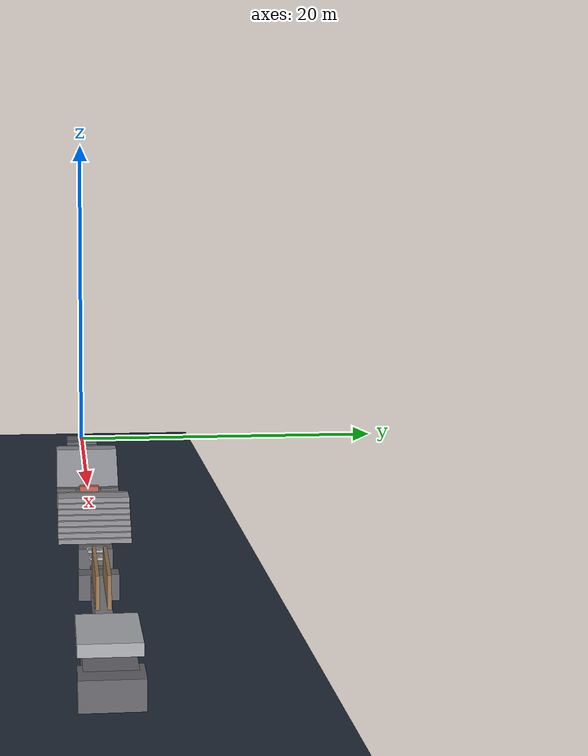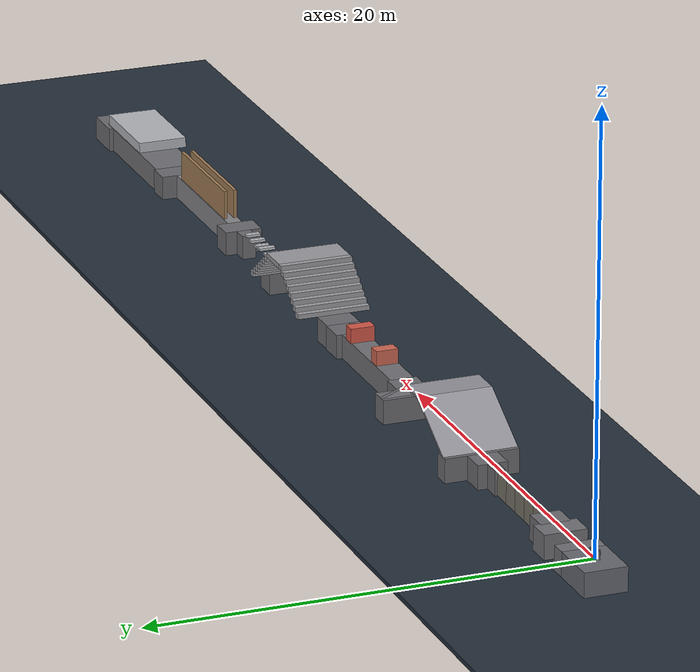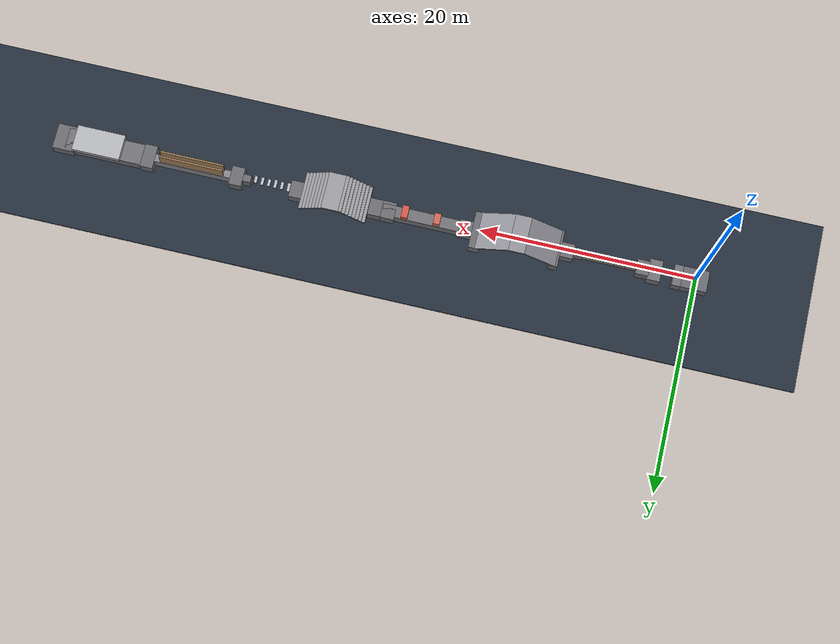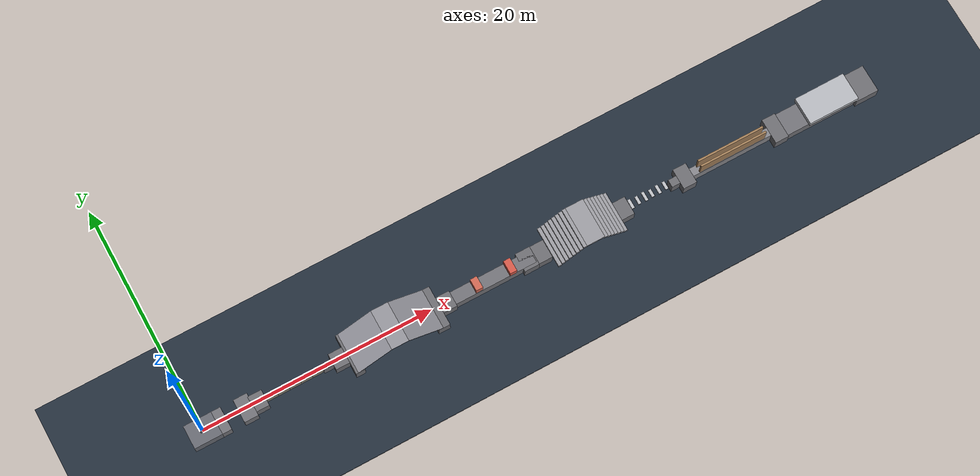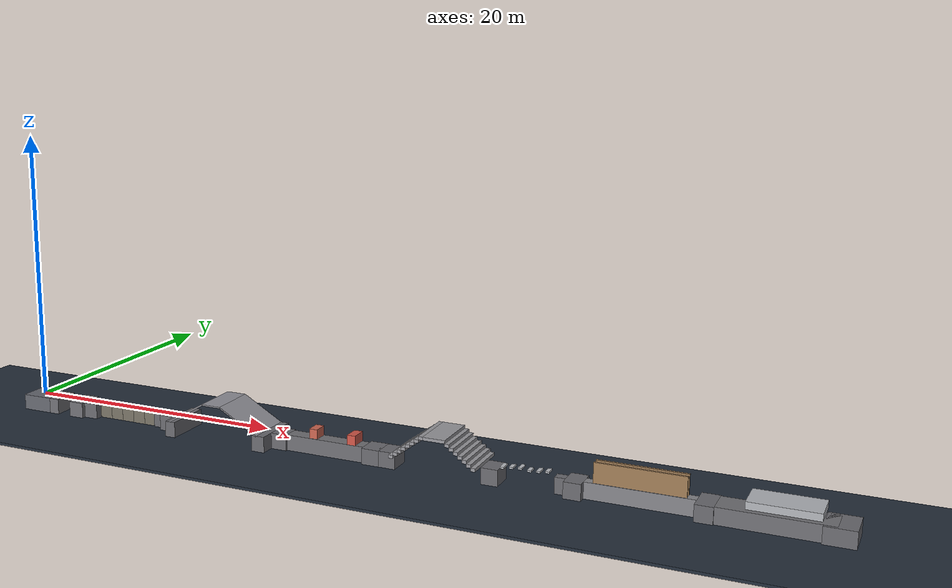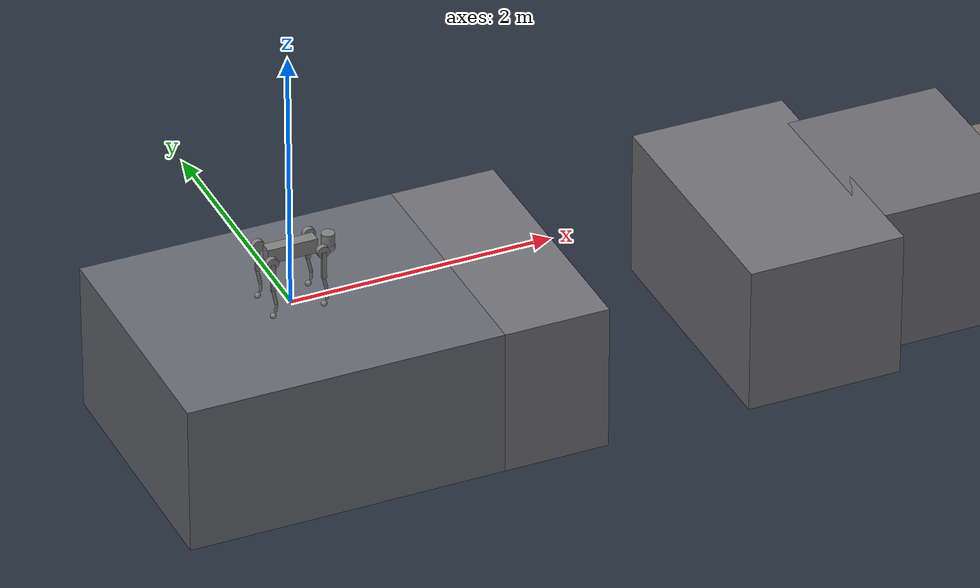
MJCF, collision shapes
<mujoco model="parkour_hard_line">
  <include file="go2.xml"/>
  <!-- Linear hard test track built from the level-10 variants of:
       jumpgap, singlebridge, cross_slope, hurdle, cross_stairs,
       air_beams, corridor, air_stones. -->
  <statistic center="0 0 0.16" extent="1.1" />

  <visual>
    <headlight diffuse="0.6 0.6 0.6" ambient="0.3 0.3 0.3" specular="0 0 0" />
    <rgba haze="0.15 0.25 0.35 1" />
    <global azimuth="-130" elevation="-20" />
  </visual>

  <asset>
    <texture type="skybox" builtin="gradient" rgb1="0.3 0.5 0.7" rgb2="0 0 0" width="512" height="3072" />
    <texture type="2d" name="groundplane" builtin="checker" mark="edge" rgb1="0.18 0.22 0.28" rgb2="0.10 0.14 0.18" markrgb="0.8 0.8 0.8" width="300" height="300" />
    <material name="groundplane" texture="groundplane" texuniform="true" texrepeat="5 5" reflectance="0.0" />
  </asset>

  <worldbody>
    <light pos="30 0 8" dir="0 0 -1" directional="true" />

    <!-- Catch floor below the whole course so gaps/bridges/beams stay meaningful. -->
    <geom name="pit_floor" pos="30 0 -1.25" size="80 8 0.10" type="box" material="groundplane" />

    <!-- Start and inter-section connectors (top surface at z=0). -->
    <geom name="start_hub" pos="0 0 -0.60" type="box" size="1.20 1.00 0.60" rgba="0.40 0.41 0.44 1" />
    <geom name="connector_1" pos="4.80 0 -0.60" type="box" size="0.60 0.70 0.60" rgba="0.42 0.42 0.44 1" />
    <geom name="connector_2" pos="11.825 0 -0.60" type="box" size="0.60 0.70 0.60" rgba="0.42 0.42 0.44 1" />
    <geom name="connector_3" pos="21.325 0 -0.60" type="box" size="0.60 0.70 0.60" rgba="0.42 0.42 0.44 1" />
    <geom name="connector_4" pos="29.825 0 -0.60" type="box" size="0.60 0.80 0.60" rgba="0.42 0.42 0.44 1" />
    <geom name="connector_5" pos="37.275 0 -0.60" type="box" size="0.60 0.80 0.60" rgba="0.42 0.42 0.44 1" />
    <geom name="connector_6" pos="42.945 0 -0.60" type="box" size="0.60 0.90 0.60" rgba="0.42 0.42 0.44 1" />
    <geom name="connector_7" pos="51.345 0 -0.60" type="box" size="0.60 1.10 0.60" rgba="0.42 0.42 0.44 1" />
    <geom name="finish_platform" pos="59.295 0 -0.60" type="box" size="1.00 1.20 0.60" rgba="0.42 0.42 0.44 1" />

    <!-- 1. jumpgap, level 10 -->
    <body name="jumpgap_segment" pos="0.30 0 0">
      <geom name="jumpgap_takeoff" pos="1.30 0 -0.60" type="box" size="0.40 1.0 0.60" rgba="0.44 0.44 0.46 1" />
      <geom name="jumpgap_landing" pos="3.40 0 -0.60" type="box" size="0.60 1.0 0.60" rgba="0.44 0.44 0.46 1" />
    </body>

    <!-- 2. singlebridge, level 10 -->
    <body name="singlebridge_segment" pos="4.50 0 0">
      <geom name="singlebridge_bridge_1" pos="1.40 0 -0.60" type="box" size="0.50 0.13 0.60" rgba="0.47 0.45 0.40 1" />
      <geom name="singlebridge_bridge_2" pos="2.40 0 -0.59" type="box" size="0.50 0.13 0.61" rgba="0.47 0.45 0.40 1" />
      <geom name="singlebridge_bridge_3" pos="3.40 0 -0.58" type="box" size="0.50 0.13 0.62" rgba="0.47 0.45 0.40 1" />
      <geom name="singlebridge_bridge_4" pos="4.40 0 -0.59" type="box" size="0.50 0.13 0.61" rgba="0.47 0.45 0.40 1" />
      <geom name="singlebridge_bridge_5" pos="5.40 0 -0.60" type="box" size="0.50 0.13 0.60" rgba="0.47 0.45 0.40 1" />
      <geom name="singlebridge_landing" pos="6.30 0 -0.60" type="box" size="0.425 0.25 0.60" rgba="0.42 0.42 0.44 1" />
    </body>

    <!-- 3. cross_slope, level 10 -->
    <body name="crossslope_segment" pos="10.626804355117875 0 0">
      <geom name="crossslope_entry_platform" pos="2.198195644882125 0 -0.60" type="box" size="0.40 1.75 0.60" rgba="0.42 0.42 0.44 1" />
      <geom name="crossslope_up" pos="3.524760152799509 0 0.811561136490367" type="box" size="1.7265645079173844 1.75 0.05" quat="0.9666377993314406 0  -0.25614715478347516 0" rgba="0.57 0.57 0.60 1" />
      <geom name="crossslope_top" pos="5.75 0 1.66" type="box" size="0.75 1.75 0.05" rgba="0.57 0.57 0.60 1" />
      <geom name="crossslope_down" pos="7.975239847799509 0 0.811561136490367" type="box" size="1.7265645079173844 1.75 0.05" quat="0.9666377993314406 0 0.25614715478347516 0" rgba="0.57 0.57 0.60 1" />
      <geom name="crossslope_end_platform" pos="9.598195644882125 0 -0.60" type="box" size="0.50 1.75 0.60" rgba="0.42 0.42 0.44 1" />
    </body>

    <!-- 4. hurdle, level 10 -->
    <body name="hurdle_segment" pos="21.025 0 0">
      <geom name="hurdle_lane" pos="4.50 0 -0.60" type="box" size="3.60 0.55 0.60" rgba="0.44 0.44 0.46 1" />
      <geom name="hurdle_1" pos="3.00 0 0.35" type="box" size="0.30 0.52 0.35" rgba="0.80 0.40 0.32 1" />
      <geom name="hurdle_2" pos="6.00 0 0.35" type="box" size="0.30 0.58 0.35" rgba="0.82 0.34 0.28 1" />
      <geom name="hurdle_landing" pos="7.55 0 -0.60" type="box" size="0.65 0.82 0.60" rgba="0.42 0.42 0.44 1" />
    </body>

    <!-- 5. cross_stairs, level 10 -->
    <body name="crossstairs_segment" pos="28.425 0 0">
      <geom name="crossstairs_1" pos="2.155 0 0.115" type="box" size="0.155 1.75 0.115" rgba="0.60 0.60 0.62 1" />
      <geom name="crossstairs_2" pos="2.465 0 0.34500000000000003" type="box" size="0.155 1.75 0.115" rgba="0.60 0.60 0.62 1" />
      <geom name="crossstairs_3" pos="2.775 0 0.5750000000000001" type="box" size="0.155 1.75 0.115" rgba="0.60 0.60 0.62 1" />
      <geom name="crossstairs_4" pos="3.085 0 0.805" type="box" size="0.155 1.75 0.115" rgba="0.60 0.60 0.62 1" />
      <geom name="crossstairs_5" pos="3.395 0 1.0350000000000001" type="box" size="0.155 1.75 0.115" rgba="0.60 0.60 0.62 1" />
      <geom name="crossstairs_6" pos="3.705 0 1.2650000000000001" type="box" size="0.155 1.75 0.115" rgba="0.60 0.60 0.62 1" />
      <geom name="crossstairs_7" pos="4.015000000000001 0 1.495" type="box" size="0.155 1.75 0.115" rgba="0.60 0.60 0.62 1" />
      <geom name="crossstairs_8" pos="4.325 0 1.725" type="box" size="0.155 1.75 0.115" rgba="0.60 0.60 0.62 1" />
      <geom name="crossstairs_top" pos="5.28 0 1.725" type="box" size="0.8 1.75 0.115" rgba="0.60 0.60 0.62 1" />
      <geom name="crossstairs_9" pos="6.235 0 1.495" type="box" size="0.155 1.75 0.115" rgba="0.60 0.60 0.62 1" />
      <geom name="crossstairs_10" pos="6.545 0 1.2650000000000001" type="box" size="0.155 1.75 0.115" rgba="0.60 0.60 0.62 1" />
      <geom name="crossstairs_11" pos="6.8549999999999995 0 1.0350000000000001" type="box" size="0.155 1.75 0.115" rgba="0.60 0.60 0.62 1" />
      <geom name="crossstairs_12" pos="7.164999999999999 0 0.8050000000000002" type="box" size="0.155 1.75 0.115" rgba="0.60 0.60 0.62 1" />
      <geom name="crossstairs_13" pos="7.474999999999999 0 0.5750000000000002" type="box" size="0.155 1.75 0.115" rgba="0.60 0.60 0.62 1" />
      <geom name="crossstairs_14" pos="7.784999999999998 0 0.3450000000000002" type="box" size="0.155 1.75 0.115" rgba="0.60 0.60 0.62 1" />
      <geom name="crossstairs_15" pos="8.094999999999999 0 0.11500000000000019" type="box" size="0.155 1.75 0.115" rgba="0.60 0.60 0.62 1" />
    </body>

    <!-- 6. air_beams, level 10 -->
    <body name="airbeams_segment" pos="36.825 0 0">
      <geom name="airbeams_beam_1" pos="1.18 0 0.06" type="box" size="0.13 0.41 0.06" rgba="0.73 0.74 0.76 1" />
      <geom name="airbeams_beam_2" pos="1.80 0 0.12" type="box" size="0.13 0.35 0.06" rgba="0.73 0.74 0.76 1" />
      <geom name="airbeams_beam_3" pos="2.42 0 0.18" type="box" size="0.13 0.39 0.06" rgba="0.73 0.74 0.76 1" />
      <geom name="airbeams_beam_4" pos="3.04 0 0.09" type="box" size="0.13 0.33 0.06" rgba="0.73 0.74 0.76 1" />
      <geom name="airbeams_beam_5" pos="3.66 0 0.15" type="box" size="0.13 0.37 0.06" rgba="0.73 0.74 0.76 1" />
      <geom name="airbeams_beam_6" pos="4.28 0 0.21" type="box" size="0.13 0.34 0.06" rgba="0.73 0.74 0.76 1" />
      <geom name="airbeams_landing" pos="5.145 0 -0.60" type="box" size="0.375 0.34 0.60" rgba="0.42 0.42 0.44 1" />
    </body>

    <!-- 7. corridor, level 10 -->
    <body name="corridor_segment" pos="42.645 0 0">
      <geom name="corridor_floor" pos="4.50 0 -0.60" type="box" size="3.60 0.36 0.60" rgba="0.52 0.52 0.54 1" />
      <geom name="corridor_wall_left" pos="4.50 0.24 0.70" type="box" size="3.00 0.08 0.70" rgba="0.63 0.49 0.34 1" />
      <geom name="corridor_wall_right" pos="4.50 -0.24 0.70" type="box" size="3.00 0.08 0.70" rgba="0.63 0.49 0.34 1" />
    </body>

    <!-- 8. air_stones, level 10 -->
    <body name="airstones_segment" pos="51.045 0 0">
      <geom name="airstones_lane" pos="4.50 0 -0.60" type="box" size="3.60 1.00 0.60" rgba="0.44 0.44 0.46 1" />
      <geom name="airstones_platform" pos="5.00 0 0.50" type="box" size="2.25 1.20 0.25" rgba="0.70 0.71 0.73 1" />
    </body>
  </worldbody>
</mujoco>

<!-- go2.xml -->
<mujoco model="go2">
  <compiler angle="radian" meshdir="assets" autolimits="true"/>

  <option cone="elliptic" impratio="100" timestep="0.02"/>

  <default>
    <default class="go2">
      <geom friction="0.6" margin="0.001" condim="1"/>
      <joint axis="0 1 0" damping="0.5" armature="0.01" frictionloss="0.2"/>
      <position forcerange="-23.7 23.7" kp="35"/>
      <default class="abduction">
        <joint axis="1 0 0" range="-1.0472 1.0472"/>
      </default>
      <default class="hip">
        <default class="front_hip">
          <joint range="-1.5708 3.4907"/>
        </default>
        <default class="back_hip">
          <joint range="-0.5236 4.5379"/>
        </default>
      </default>
      <default class="knee">
        <joint range="-2.7227 -0.83776"/>
        <position forcerange="-45.43 45.43"/>
      </default>
      <default class="visual">
        <geom type="mesh" contype="0" conaffinity="0" group="2"/>
      </default>
      <default class="collision">
        <geom group="3"  contype="1" conaffinity="2"/>
        <default class="foot">
          <geom size="0.022" pos="-0.002 0 -0.213" priority="1" condim="6"
            friction="0.4 0.02 0.01"/>
        </default>
      </default>
    </default>
  </default>

  <asset>
    <material name="metal" rgba=".9 .95 .95 1"/>
    <material name="black" rgba="0 0 0 1"/>
    <material name="white" rgba="1 1 1 1"/>
    <material name="gray" rgba="0.671705 0.692426 0.774270 1"/>

    <mesh file="base_0.obj"/>
    <mesh file="base_1.obj"/>
    <mesh file="base_2.obj"/>
    <mesh file="base_3.obj"/>
    <mesh file="base_4.obj"/>
    <mesh file="hip_0.obj"/>
    <mesh file="hip_1.obj"/>
    <mesh file="thigh_0.obj"/>
    <mesh file="thigh_1.obj"/>
    <mesh file="thigh_mirror_0.obj"/>
    <mesh file="thigh_mirror_1.obj"/>
    <mesh file="calf_0.obj"/>
    <mesh file="calf_1.obj"/>
    <mesh file="calf_mirror_0.obj"/>
    <mesh file="calf_mirror_1.obj"/>
    <mesh file="foot.obj"/>
  </asset>

  <worldbody>
    <body name="base" pos="0 0 0.445" childclass="go2">
      <inertial pos="0.021112 0 -0.005366" quat="-0.000543471 0.713435 -0.00173769 0.700719" mass="6.921"
        diaginertia="0.107027 0.0980771 0.0244531"/>
      <freejoint/>
      <geom mesh="base_0" material="black" class="visual"/>
      <geom mesh="base_1" material="black" class="visual"/>
      <geom mesh="base_2" material="black" class="visual"/>
      <geom mesh="base_3" material="white" class="visual"/>
      <geom mesh="base_4" material="gray" class="visual"/>
      <geom name="base1" size="0.1881 0.04675 0.057" type="box" class="collision"/>
      <geom name="base2" size="0.05 0.045" pos="0.285 0 0.01" type="cylinder" class="collision"/>
      <geom name="base3" size="0.047" pos="0.293 0 -0.06" class="collision"/>
      <site name="imu" pos="-0.02557 0 0.04232"/>
      <body name="FL_hip" pos="0.1934 0.0465 0">
        <inertial pos="-0.0054 0.00194 -0.000105" quat="0.497014 0.499245 0.505462 0.498237" mass="0.678"
          diaginertia="0.00088403 0.000596003 0.000479967"/>
        <joint name="FL_hip_joint" class="abduction"/>
        <geom mesh="hip_0" material="metal" class="visual"/>
        <geom mesh="hip_1" material="gray" class="visual"/>
        <geom name="FL_hip_geom" size="0.046 0.02" pos="0 0.08 0" quat="1 1 0 0" type="cylinder" class="collision"/>
        <body name="FL_thigh" pos="0 0.0955 0">
          <inertial pos="-0.00374 -0.0223 -0.0327" quat="0.829533 0.0847635 -0.0200632 0.551623" mass="1.152"
            diaginertia="0.00594973 0.00584149 0.000878787"/>
          <joint name="FL_thigh_joint" class="front_hip"/>
          <geom mesh="thigh_0" material="metal" class="visual"/>
          <geom mesh="thigh_1" material="gray" class="visual"/>
          <geom name="FL_thigh_geom" size="0.1065 0.01225 0.017" pos="0 0 -0.1065" quat="0.707107 0 0.707107 0" type="box" class="collision"/>
          <body name="FL_calf" pos="0 0 -0.213">
            <inertial pos="0.00629595 -0.000622121 -0.141417" quat="0.710672 0.00154099 -0.00450087 0.703508"
              mass="0.241352" diaginertia="0.0014901 0.00146356 5.31397e-05"/>
            <joint name="FL_calf_joint" class="knee"/>
            <geom mesh="calf_0" material="gray" class="visual"/>
            <geom mesh="calf_1" material="black" class="visual"/>
            <geom name="FL_calf_geom1" size="0.012 0.06" pos="0.008 0 -0.06" quat="0.994493 0 -0.104807 0" type="cylinder" class="collision"/>
            <geom name="FL_calf_geom2" size="0.011 0.0325" pos="0.02 0 -0.148" quat="0.999688 0 0.0249974 0" type="cylinder" class="collision"/>
            <geom pos="0 0 -0.213" mesh="foot" class="visual" material="black"/>
            <geom name="FL" class="foot"/>
          </body>
        </body>
      </body>
      <body name="FR_hip" pos="0.1934 -0.0465 0">
        <inertial pos="-0.0054 -0.00194 -0.000105" quat="0.498237 0.505462 0.499245 0.497014" mass="0.678"
          diaginertia="0.00088403 0.000596003 0.000479967"/>
        <joint name="FR_hip_joint" class="abduction"/>
        <geom mesh="hip_0" material="metal" class="visual" quat="4.63268e-05 1 0 0"/>
        <geom mesh="hip_1" material="gray" class="visual" quat="4.63268e-05 1 0 0"/>
        <geom name="FR_hip_geom" size="0.046 0.02" pos="0 -0.08 0" quat="0.707107 0.707107 0 0" type="cylinder" class="collision"/>
        <body name="FR_thigh" pos="0 -0.0955 0">
          <inertial pos="-0.00374 0.0223 -0.0327" quat="0.551623 -0.0200632 0.0847635 0.829533" mass="1.152"
            diaginertia="0.00594973 0.00584149 0.000878787"/>
          <joint name="FR_thigh_joint" class="front_hip"/>
          <geom mesh="thigh_mirror_0" material="metal" class="visual"/>
          <geom mesh="thigh_mirror_1" material="gray" class="visual"/>
          <geom name="FR_thigh_geom" size="0.1065 0.01225 0.017" pos="0 0 -0.1065" quat="0.707107 0 0.707107 0" type="box" class="collision"/>
          <body name="FR_calf" pos="0 0 -0.213">
            <inertial pos="0.00629595 0.000622121 -0.141417" quat="0.703508 -0.00450087 0.00154099 0.710672"
              mass="0.241352" diaginertia="0.0014901 0.00146356 5.31397e-05"/>
            <joint name="FR_calf_joint" class="knee"/>
            <geom mesh="calf_mirror_0" material="gray" class="visual"/>
            <geom mesh="calf_mirror_1" material="black" class="visual"/>
            <geom name="FR_calf_geom1" size="0.013 0.06" pos="0.01 0 -0.06" quat="0.995004 0 -0.0998334 0" type="cylinder" class="collision"/>
            <geom name="FR_calf_geom2" size="0.011 0.0325" pos="0.02 0 -0.148" quat="0.999688 0 0.0249974 0" type="cylinder" class="collision"/>
            <geom pos="0 0 -0.213" mesh="foot" class="visual" material="black"/>
            <geom name="FR" class="foot"/>
          </body>
        </body>
      </body>
      <body name="RL_hip" pos="-0.1934 0.0465 0">
        <inertial pos="0.0054 0.00194 -0.000105" quat="0.505462 0.498237 0.497014 0.499245" mass="0.678"
          diaginertia="0.00088403 0.000596003 0.000479967"/>
        <joint name="RL_hip_joint" class="abduction"/>
        <geom mesh="hip_0" material="metal" class="visual" quat="4.63268e-05 0 1 0"/>
        <geom mesh="hip_1" material="gray" class="visual" quat="4.63268e-05 0 1 0"/>
        <geom name="RL_hip_geom" size="0.046 0.02" pos="0 0.08 0" quat="0.707107 0.707107 0 0" type="cylinder" class="collision"/>
        <body name="RL_thigh" pos="0 0.0955 0">
          <inertial pos="-0.00374 -0.0223 -0.0327" quat="0.829533 0.0847635 -0.0200632 0.551623" mass="1.152"
            diaginertia="0.00594973 0.00584149 0.000878787"/>
          <joint name="RL_thigh_joint" class="back_hip"/>
          <geom mesh="thigh_0" material="metal" class="visual"/>
          <geom mesh="thigh_1" material="gray" class="visual"/>
          <geom name="RL_thigh_geom" size="0.1065 0.01225 0.017" pos="0 0 -0.1065" quat="0.707107 0 0.707107 0" type="box" class="collision"/>
          <body name="RL_calf" pos="0 0 -0.213">
            <inertial pos="0.00629595 -0.000622121 -0.141417" quat="0.710672 0.00154099 -0.00450087 0.703508"
              mass="0.241352" diaginertia="0.0014901 0.00146356 5.31397e-05"/>
            <joint name="RL_calf_joint" class="knee"/>
            <geom mesh="calf_0" material="gray" class="visual"/>
            <geom mesh="calf_1" material="black" class="visual"/>
            <geom name="RL_calf_geom1" size="0.013 0.06" pos="0.01 0 -0.06" quat="0.995004 0 -0.0998334 0" type="cylinder" class="collision"/>
            <geom name="RL_calf_geom2" size="0.011 0.0325" pos="0.02 0 -0.148" quat="0.999688 0 0.0249974 0" type="cylinder" class="collision"/>
            <geom pos="0 0 -0.213" mesh="foot" class="visual" material="black"/>
            <geom name="RL" class="foot"/>
          </body>
        </body>
      </body>
      <body name="RR_hip" pos="-0.1934 -0.0465 0">
        <inertial pos="0.0054 -0.00194 -0.000105" quat="0.499245 0.497014 0.498237 0.505462" mass="0.678"
          diaginertia="0.00088403 0.000596003 0.000479967"/>
        <joint name="RR_hip_joint" class="abduction"/>
        <geom mesh="hip_0" material="metal" class="visual" quat="2.14617e-09 4.63268e-05 4.63268e-05 -1"/>
        <geom mesh="hip_1" material="gray" class="visual" quat="2.14617e-09 4.63268e-05 4.63268e-05 -1"/>
        <geom name="RR_hip_geom" size="0.046 0.02" pos="0 -0.08 0" quat="0.707107 0.707107 0 0" type="cylinder" class="collision"/>
        <body name="RR_thigh" pos="0 -0.0955 0">
          <inertial pos="-0.00374 0.0223 -0.0327" quat="0.551623 -0.0200632 0.0847635 0.829533" mass="1.152"
            diaginertia="0.00594973 0.00584149 0.000878787"/>
          <joint name="RR_thigh_joint" class="back_hip"/>
          <geom mesh="thigh_mirror_0" material="metal" class="visual"/>
          <geom mesh="thigh_mirror_1" material="gray" class="visual"/>
          <geom name="RR_thigh_geom" size="0.1065 0.01225 0.017" pos="0 0 -0.1065" quat="0.707107 0 0.707107 0" type="box" class="collision"/>
          <body name="RR_calf" pos="0 0 -0.213">
            <inertial pos="0.00629595 0.000622121 -0.141417" quat="0.703508 -0.00450087 0.00154099 0.710672"
              mass="0.241352" diaginertia="0.0014901 0.00146356 5.31397e-05"/>
            <joint name="RR_calf_joint" class="knee"/>
            <geom mesh="calf_mirror_0" material="gray" class="visual"/>
            <geom mesh="calf_mirror_1" material="black" class="visual"/>
            <geom name="RR_calf_geom1" size="0.013 0.06" pos="0.01 0 -0.06" quat="0.995004 0 -0.0998334 0" type="cylinder" class="collision"/>
            <geom name="RR_calf_geom2" size="0.011 0.0325" pos="0.02 0 -0.148" quat="0.999688 0 0.0249974 0" type="cylinder" class="collision"/>
            <geom pos="0 0 -0.213" mesh="foot" class="visual" material="black"/>
            <geom name="RR" class="foot"/>
          </body>
        </body>
      </body>
    </body>
  </worldbody>

  <actuator>
    <position class="abduction" name="FR_hip" joint="FR_hip_joint"/>
    <position class="hip" name="FR_thigh" joint="FR_thigh_joint"/>
    <position class="knee" name="FR_calf" joint="FR_calf_joint"/>
    <position class="abduction" name="FL_hip" joint="FL_hip_joint"/>
    <position class="hip" name="FL_thigh" joint="FL_thigh_joint"/>
    <position class="knee" name="FL_calf" joint="FL_calf_joint"/>
    <position class="abduction" name="RR_hip" joint="RR_hip_joint"/>
    <position class="hip" name="RR_thigh" joint="RR_thigh_joint"/>
    <position class="knee" name="RR_calf" joint="RR_calf_joint"/>
    <position class="abduction" name="RL_hip" joint="RL_hip_joint"/>
    <position class="hip" name="RL_thigh" joint="RL_thigh_joint"/>
    <position class="knee" name="RL_calf" joint="RL_calf_joint"/>
  </actuator>

  <sensor>

    <gyro site="imu" name="gyro"/>
    <accelerometer site="imu" name="accelerometer"/>
    <velocimeter site="imu" name="local_linvel"/>
    <framezaxis objtype="site" objname="imu" name="upvector"/>

    <framepos objtype="site" objname="imu" name="global_position"/>
    <framelinvel objtype="site" objname="imu" name="global_linvel"/>
    <frameangvel objtype="site" objname="imu" name="global_angvel"/>

    <framepos objtype="geom" objname="FR" name="FR_pos"/>
    <framepos objtype="geom" objname="FL" name="FL_pos"/>
    <framepos objtype="geom" objname="RR" name="RR_pos"/>
    <framepos objtype="geom" objname="RL" name="RL_pos"/>

    <framelinvel objtype="geom" objname="FR" name="FR_vel"/>
    <framelinvel objtype="geom" objname="FL" name="FL_vel"/>
    <framelinvel objtype="geom" objname="RR" name="RR_vel"/>
    <framelinvel objtype="geom" objname="RL" name="RL_vel"/>
  </sensor>

  <keyframe>
    <key name="home" qpos="
        0 0 0.3  1 0 0 0
        0 0.8 -1.5
        0 0.8 -1.5
        0 1 -1.5
        0 1 -1.5"
      ctrl="
        0 0.8 -1.5
        0 0.8 -1.5
        0 1 -1.5
        0 1 -1.5"/>
  </keyframe>

</mujoco>
